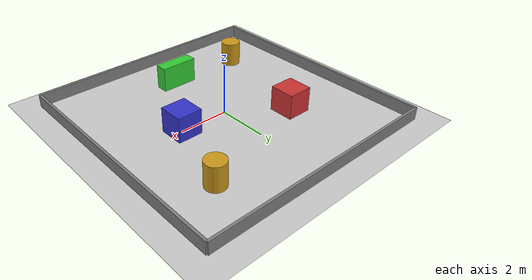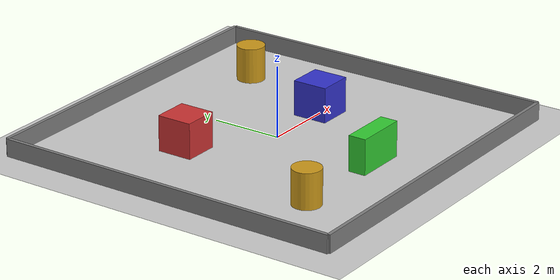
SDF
<?xml version="1.0" ?>
<sdf version="1.9">
  <world name="lidar_world">

    <physics name="1ms" type="ignored">
      <max_step_size>0.001</max_step_size>
      <real_time_factor>1.0</real_time_factor>
    </physics>

    <plugin filename="gz-sim-physics-system" name="gz::sim::systems::Physics"/>
    <plugin filename="gz-sim-sensors-system" name="gz::sim::systems::Sensors">
      <render_engine>ogre2</render_engine>
    </plugin>
    <plugin filename="gz-sim-scene-broadcaster-system" name="gz::sim::systems::SceneBroadcaster"/>
    <plugin filename="gz-sim-user-commands-system" name="gz::sim::systems::UserCommands"/>

    <light type="directional" name="sun">
      <cast_shadows>true</cast_shadows>
      <pose>0 0 10 0 0 0</pose>
      <diffuse>0.8 0.8 0.8 1</diffuse>
      <specular>0.2 0.2 0.2 1</specular>
      <direction>-0.5 0.1 -0.9</direction>
    </light>

    <!-- ===================== GROUND ===================== -->
    <model name="ground_plane">
      <static>true</static>
      <link name="link">
        <collision name="collision">
          <geometry><plane><normal>0 0 1</normal><size>50 50</size></plane></geometry>
        </collision>
        <visual name="visual">
          <geometry><plane><normal>0 0 1</normal><size>50 50</size></plane></geometry>
          <material><ambient>0.8 0.8 0.8 1</ambient><diffuse>0.8 0.8 0.8 1</diffuse></material>
        </visual>
      </link>
    </model>

    <!-- ===================== SQUARE BOUNDARY WALL ===================== -->
    <!-- Wall size: 10m x 10m square area, wall height 0.5m, thickness 0.1m -->

    <model name="wall_north">
      <static>true</static>
      <pose>0 5 0.25 0 0 0</pose>
      <link name="link">
        <collision name="collision"><geometry><box><size>10 0.1 0.5</size></box></geometry></collision>
        <visual name="visual">
          <geometry><box><size>10 0.1 0.5</size></box></geometry>
          <material><ambient>0.5 0.5 0.5 1</ambient></material>
        </visual>
      </link>
    </model>

    <model name="wall_south">
      <static>true</static>
      <pose>0 -5 0.25 0 0 0</pose>
      <link name="link">
        <collision name="collision"><geometry><box><size>10 0.1 0.5</size></box></geometry></collision>
        <visual name="visual">
          <geometry><box><size>10 0.1 0.5</size></box></geometry>
          <material><ambient>0.5 0.5 0.5 1</ambient></material>
        </visual>
      </link>
    </model>

    <model name="wall_east">
      <static>true</static>
      <pose>5 0 0.25 0 0 1.5708</pose>
      <link name="link">
        <collision name="collision"><geometry><box><size>10 0.1 0.5</size></box></geometry></collision>
        <visual name="visual">
          <geometry><box><size>10 0.1 0.5</size></box></geometry>
          <material><ambient>0.5 0.5 0.5 1</ambient></material>
        </visual>
      </link>
    </model>

    <model name="wall_west">
      <static>true</static>
      <pose>-5 0 0.25 0 0 1.5708</pose>
      <link name="link">
        <collision name="collision"><geometry><box><size>10 0.1 0.5</size></box></geometry></collision>
        <visual name="visual">
          <geometry><box><size>10 0.1 0.5</size></box></geometry>
          <material><ambient>0.5 0.5 0.5 1</ambient></material>
        </visual>
      </link>
    </model>

    <!-- ===================== OBSTACLES ===================== -->

    <model name="box1">
      <static>true</static>
      <pose>2 0 0.5 0 0 0</pose>
      <link name="link">
        <collision name="collision"><geometry><box><size>1 1 1</size></box></geometry></collision>
        <visual name="visual">
          <geometry><box><size>1 1 1</size></box></geometry>
          <material><ambient>0.2 0.2 0.8 1</ambient></material>
        </visual>
      </link>
    </model>

    <model name="box2">
      <static>true</static>
      <pose>-2 1.5 0.5 0 0 0</pose>
      <link name="link">
        <collision name="collision"><geometry><box><size>1 1 1</size></box></geometry></collision>
        <visual name="visual">
          <geometry><box><size>1 1 1</size></box></geometry>
          <material><ambient>0.8 0.2 0.2 1</ambient></material>
        </visual>
      </link>
    </model>

    <model name="box3">
      <static>true</static>
      <pose>0 -3 0.5 0 0 0</pose>
      <link name="link">
        <collision name="collision"><geometry><box><size>1.5 0.5 1</size></box></geometry></collision>
        <visual name="visual">
          <geometry><box><size>1.5 0.5 1</size></box></geometry>
          <material><ambient>0.2 0.8 0.2 1</ambient></material>
        </visual>
      </link>
    </model>

    <model name="cylinder1">
      <static>true</static>
      <pose>3 3 0.5 0 0 0</pose>
      <link name="link">
        <collision name="collision"><geometry><cylinder><radius>0.4</radius><length>1</length></cylinder></geometry></collision>
        <visual name="visual">
          <geometry><cylinder><radius>0.4</radius><length>1</length></cylinder></geometry>
          <material><ambient>0.8 0.6 0.1 1</ambient></material>
        </visual>
      </link>
    </model>

    <model name="cylinder2">
      <static>true</static>
      <pose>-3 -3 0.5 0 0 0</pose>
      <link name="link">
        <collision name="collision"><geometry><cylinder><radius>0.4</radius><length>1</length></cylinder></geometry></collision>
        <visual name="visual">
          <geometry><cylinder><radius>0.4</radius><length>1</length></cylinder></geometry>
          <material><ambient>0.8 0.6 0.1 1</ambient></material>
        </visual>
      </link>
    </model>

  </world>
</sdf>
